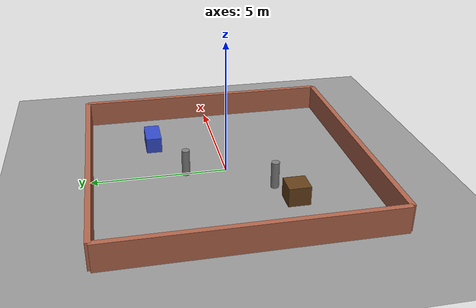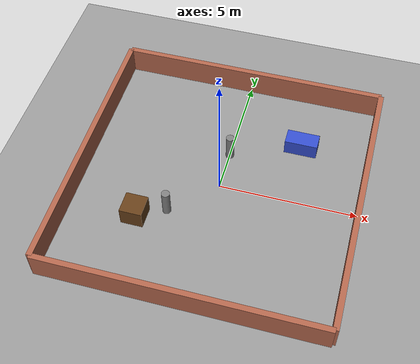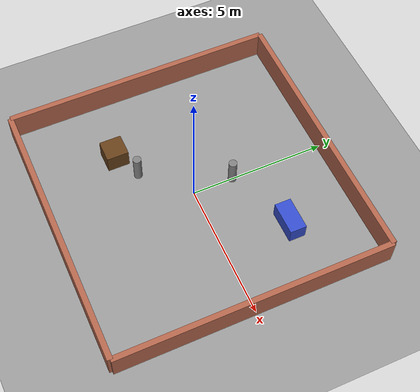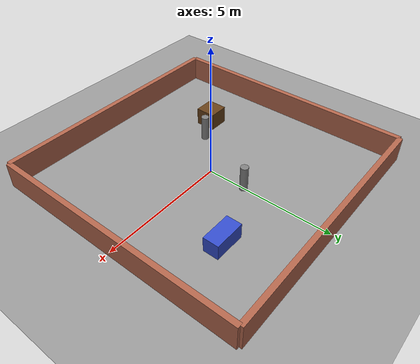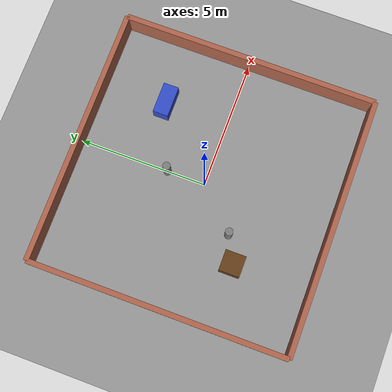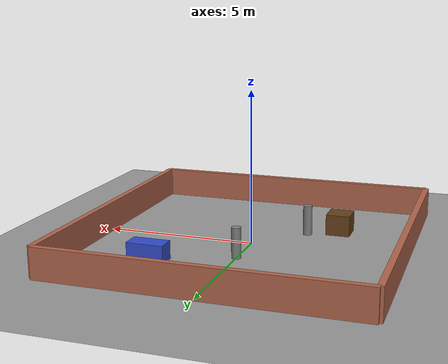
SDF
<?xml version="1.0" ?>
<sdf version="1.9">
  <world name="go2_world">
    <physics name="1ms" type="ignored">
      <max_step_size>0.001</max_step_size>
      <real_time_factor>1.0</real_time_factor>
    </physics>

    <plugin filename="ignition-gazebo-physics-system" name="ignition::gazebo::systems::Physics" />
    <plugin filename="ignition-gazebo-sensors-system" name="ignition::gazebo::systems::Sensors">
      <render_engine>ogre2</render_engine>
    </plugin>
    <plugin filename="ignition-gazebo-scene-broadcaster-system" name="ignition::gazebo::systems::SceneBroadcaster" />
    <plugin filename="ignition-gazebo-user-commands-system" name="ignition::gazebo::systems::UserCommands" />
    <plugin filename="ignition-gazebo-imu-system" name="ignition::gazebo::systems::Imu" />
    <plugin filename="ignition-gazebo-contact-system" name="ignition::gazebo::systems::Contact" />

    <light type="directional" name="sun">
      <cast_shadows>true</cast_shadows>
      <pose>0 0 10 0 0 0</pose>
      <diffuse>0.8 0.8 0.8 1</diffuse>
      <specular>0.2 0.2 0.2 1</specular>
      <attenuation>
        <range>1000</range>
        <constant>0.9</constant>
        <linear>0.01</linear>
        <quadratic>0.001</quadratic>
      </attenuation>
      <direction>-0.5 0.1 -0.9</direction>
    </light>

    <model name="ground_plane">
      <static>true</static>
      <link name="link">
        <collision name="collision">
          <geometry>
            <plane>
              <normal>0 0 1</normal>
              <size>50 50</size>
            </plane>
          </geometry>
          <surface>
            <friction>
              <ode>
                <mu>1.0</mu>
                <mu2>1.0</mu2>
              </ode>
            </friction>
          </surface>
        </collision>
        <visual name="visual">
          <geometry>
            <plane>
              <normal>0 0 1</normal>
              <size>50 50</size>
            </plane>
          </geometry>
          <material>
            <ambient>0.6 0.6 0.6 1</ambient>
            <diffuse>0.6 0.6 0.6 1</diffuse>
          </material>
        </visual>
      </link>
    </model>

    <!-- Simple room walls + obstacles so slam_toolbox has features to map -->
    <model name="wall_north">
      <static>true</static>
      <pose>0 5 0.5 0 0 0</pose>
      <link name="link">
        <collision name="collision">
          <geometry><box><size>10 0.2 1</size></box></geometry>
        </collision>
        <visual name="visual">
          <geometry><box><size>10 0.2 1</size></box></geometry>
          <material><ambient>0.7 0.4 0.3 1</ambient><diffuse>0.7 0.4 0.3 1</diffuse></material>
        </visual>
      </link>
    </model>
    <model name="wall_south">
      <static>true</static>
      <pose>0 -5 0.5 0 0 0</pose>
      <link name="link">
        <collision name="collision">
          <geometry><box><size>10 0.2 1</size></box></geometry>
        </collision>
        <visual name="visual">
          <geometry><box><size>10 0.2 1</size></box></geometry>
          <material><ambient>0.7 0.4 0.3 1</ambient><diffuse>0.7 0.4 0.3 1</diffuse></material>
        </visual>
      </link>
    </model>
    <model name="wall_east">
      <static>true</static>
      <pose>5 0 0.5 0 0 1.5708</pose>
      <link name="link">
        <collision name="collision">
          <geometry><box><size>10 0.2 1</size></box></geometry>
        </collision>
        <visual name="visual">
          <geometry><box><size>10 0.2 1</size></box></geometry>
          <material><ambient>0.7 0.4 0.3 1</ambient><diffuse>0.7 0.4 0.3 1</diffuse></material>
        </visual>
      </link>
    </model>
    <model name="wall_west">
      <static>true</static>
      <pose>-5 0 0.5 0 0 1.5708</pose>
      <link name="link">
        <collision name="collision">
          <geometry><box><size>10 0.2 1</size></box></geometry>
        </collision>
        <visual name="visual">
          <geometry><box><size>10 0.2 1</size></box></geometry>
          <material><ambient>0.7 0.4 0.3 1</ambient><diffuse>0.7 0.4 0.3 1</diffuse></material>
        </visual>
      </link>
    </model>

    <model name="sofa_box">
      <static>true</static>
      <pose>2.5 2.5 0.3 0 0 0</pose>
      <link name="link">
        <collision name="collision">
          <geometry><box><size>1.2 0.6 0.6</size></box></geometry>
        </collision>
        <visual name="visual">
          <geometry><box><size>1.2 0.6 0.6</size></box></geometry>
          <material><ambient>0.2 0.3 0.8 1</ambient><diffuse>0.2 0.3 0.8 1</diffuse></material>
        </visual>
      </link>
    </model>

    <model name="table_box">
      <static>true</static>
      <pose>-2.5 -2.0 0.35 0 0 0</pose>
      <link name="link">
        <collision name="collision">
          <geometry><box><size>0.8 0.8 0.7</size></box></geometry>
        </collision>
        <visual name="visual">
          <geometry><box><size>0.8 0.8 0.7</size></box></geometry>
          <material><ambient>0.4 0.25 0.1 1</ambient><diffuse>0.4 0.25 0.1 1</diffuse></material>
        </visual>
      </link>
    </model>

    <model name="pillar_1">
      <static>true</static>
      <pose>0 1.5 0.5 0 0 0</pose>
      <link name="link">
        <collision name="collision">
          <geometry><cylinder><radius>0.15</radius><length>1.0</length></cylinder></geometry>
        </collision>
        <visual name="visual">
          <geometry><cylinder><radius>0.15</radius><length>1.0</length></cylinder></geometry>
          <material><ambient>0.5 0.5 0.5 1</ambient><diffuse>0.5 0.5 0.5 1</diffuse></material>
        </visual>
      </link>
    </model>

    <model name="pillar_2">
      <static>true</static>
      <pose>-1.5 -1.5 0.5 0 0 0</pose>
      <link name="link">
        <collision name="collision">
          <geometry><cylinder><radius>0.15</radius><length>1.0</length></cylinder></geometry>
        </collision>
        <visual name="visual">
          <geometry><cylinder><radius>0.15</radius><length>1.0</length></cylinder></geometry>
          <material><ambient>0.5 0.5 0.5 1</ambient><diffuse>0.5 0.5 0.5 1</diffuse></material>
        </visual>
      </link>
    </model>
  </world>
</sdf>
